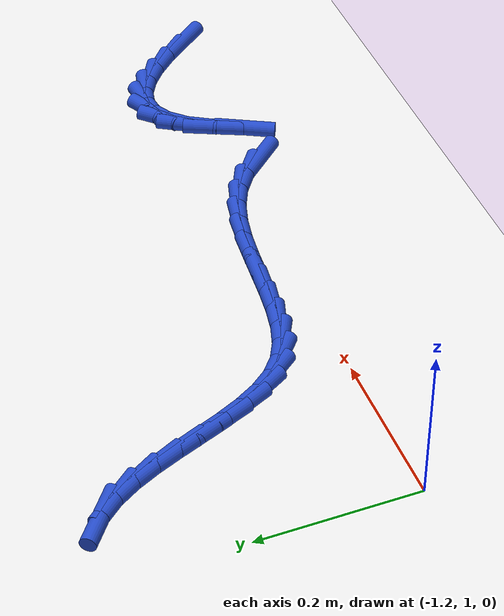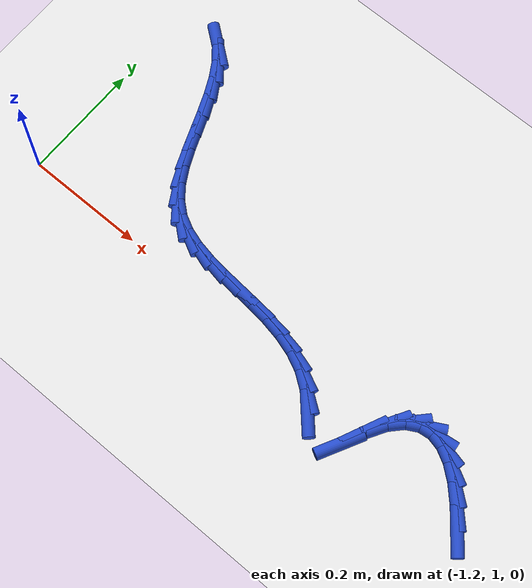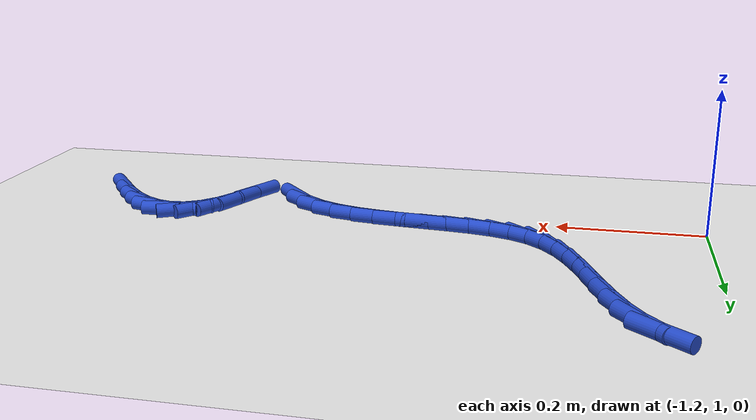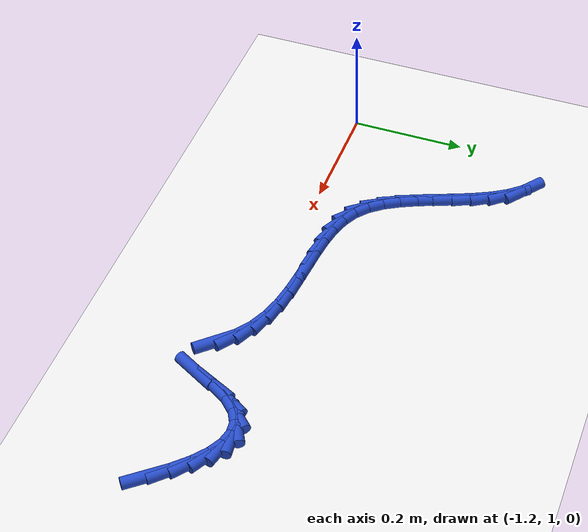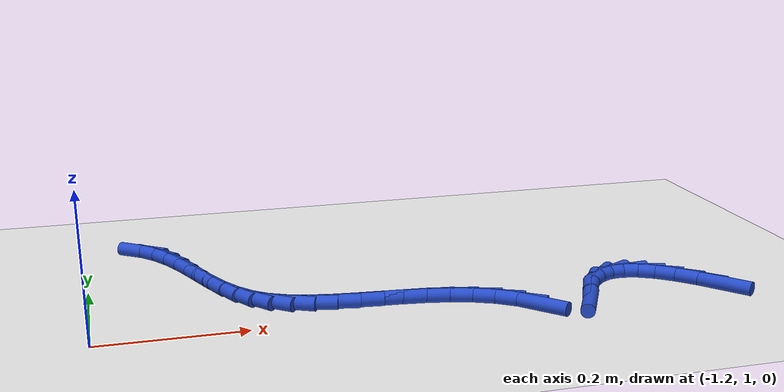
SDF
<sdf version="1.6">
 <world name="default">
  <model name="ground_plane">
   <static>1</static>
   <link name="link">
    <collision name="collision">
     <geometry><plane><normal>0 0 1</normal><size>100 100</size></plane></geometry>
     <surface><friction><ode><mu>100</mu><mu2>50</mu2></ode></friction></surface>
    </collision>
    <visual name="visual">
     <cast_shadows>0</cast_shadows>
     <geometry><plane><normal>0 0 1</normal><size>100 100</size></plane></geometry>
     <material>
      <script><uri>file://media/materials/scripts/gazebo.material</uri><name>Gazebo/WhiteGlow</name></script>
     </material>
    </visual>
   </link>
  </model>
  <model name="line">
   <link name="link_30">
    <pose>-0.3412301344344989 0.9682500073039392 0.01 0 1.57 -0.8949391870520805</pose>
    <collision name="collision">
     <geometry><cylinder><radius>0.01</radius><length>0.08</length></cylinder></geometry>
    </collision>
    <visual name="visual">
     <material>
      <script><name>Gazebo/Blue</name><uri>file://media/materials/scripts/gazebo.material</uri></script>
     </material>
     <geometry><cylinder><radius>0.01</radius><length>0.08</length></cylinder></geometry>
    </visual>
   </link>
   <link name="link_31">
    <pose>-0.36457383218997574 0.9973629535451036 0.01 0 1.57 -0.8075825705660558</pose>
    <collision name="collision">
     <geometry><cylinder><radius>0.01</radius><length>0.08</length></cylinder></geometry>
    </collision>
    <visual name="visual">
     <material>
      <script><name>Gazebo/Blue</name><uri>file://media/materials/scripts/gazebo.material</uri></script>
     </material>
     <geometry><cylinder><radius>0.01</radius><length>0.08</length></cylinder></geometry>
    </visual>
   </link>
   <link name="link_32">
    <pose>-0.38781319071357445 1.0216569851740191 0.01 0 1.57 -0.6838160753995134</pose>
    <collision name="collision">
     <geometry><cylinder><radius>0.01</radius><length>0.08</length></cylinder></geometry>
    </collision>
    <visual name="visual">
     <material>
      <script><name>Gazebo/Blue</name><uri>file://media/materials/scripts/gazebo.material</uri></script>
     </material>
     <geometry><cylinder><radius>0.01</radius><length>0.08</length></cylinder></geometry>
    </visual>
   </link>
   <link name="link_33">
    <pose>-0.41078689892767956 1.0403803845367259 0.01 0 1.57 -0.5028547437351969</pose>
    <collision name="collision">
     <geometry><cylinder><radius>0.01</radius><length>0.08</length></cylinder></geometry>
    </collision>
    <visual name="visual">
     <material>
      <script><name>Gazebo/Blue</name><uri>file://media/materials/scripts/gazebo.material</uri></script>
     </material>
     <geometry><cylinder><radius>0.01</radius><length>0.08</length></cylinder></geometry>
    </visual>
   </link>
   <link name="link_34">
    <pose>-0.433333645754676 1.0527814339792638 0.01 0 1.57 -0.23799572866431298</pose>
    <collision name="collision">
     <geometry><cylinder><radius>0.01</radius><length>0.08</length></cylinder></geometry>
    </collision>
    <visual name="visual">
     <material>
      <script><name>Gazebo/Blue</name><uri>file://media/materials/scripts/gazebo.material</uri></script>
     </material>
     <geometry><cylinder><radius>0.01</radius><length>0.08</length></cylinder></geometry>
    </visual>
   </link>
   <link name="link_35">
    <pose>-0.45529212011694814 1.058108415847673 0.01 0 1.57 0.1172780119326538</pose>
    <collision name="collision">
     <geometry><cylinder><radius>0.01</radius><length>0.08</length></cylinder></geometry>
    </collision>
    <visual name="visual">
     <material>
      <script><name>Gazebo/Blue</name><uri>file://media/materials/scripts/gazebo.material</uri></script>
     </material>
     <geometry><cylinder><radius>0.01</radius><length>0.08</length></cylinder></geometry>
    </visual>
   </link>
   <link name="link_36">
    <pose>-0.47650101093688124 1.0556096124879937 0.01 0 1.57 0.4995240952023879</pose>
    <collision name="collision">
     <geometry><cylinder><radius>0.01</radius><length>0.08</length></cylinder></geometry>
    </collision>
    <visual name="visual">
     <material>
      <script><name>Gazebo/Blue</name><uri>file://media/materials/scripts/gazebo.material</uri></script>
     </material>
     <geometry><cylinder><radius>0.01</radius><length>0.08</length></cylinder></geometry>
    </visual>
   </link>
   <link name="link_37">
    <pose>-0.49679900713685976 1.0445333062462656 0.01 0 1.57 0.8151571539769104</pose>
    <collision name="collision">
     <geometry><cylinder><radius>0.01</radius><length>0.08</length></cylinder></geometry>
    </collision>
    <visual name="visual">
     <material>
      <script><name>Gazebo/Blue</name><uri>file://media/materials/scripts/gazebo.material</uri></script>
     </material>
     <geometry><cylinder><radius>0.01</radius><length>0.08</length></cylinder></geometry>
    </visual>
   </link>
   <link name="link_38">
    <pose>-0.5160247976392685 1.0241277794685293 0.01 0 1.57 1.037218106697893</pose>
    <collision name="collision">
     <geometry><cylinder><radius>0.01</radius><length>0.08</length></cylinder></geometry>
    </collision>
    <visual name="visual">
     <material>
      <script><name>Gazebo/Blue</name><uri>file://media/materials/scripts/gazebo.material</uri></script>
     </material>
     <geometry><cylinder><radius>0.01</radius><length>0.08</length></cylinder></geometry>
    </visual>
   </link>
   <link name="link_39">
    <pose>-0.5340183513088653 0.9936681118715908 0.01 0 1.57 1.1435346667572042</pose>
    <collision name="collision">
     <geometry><cylinder><radius>0.01</radius><length>0.08</length></cylinder></geometry>
    </collision>
    <visual name="visual">
     <material>
      <script><name>Gazebo/Blue</name><uri>file://media/materials/scripts/gazebo.material</uri></script>
     </material>
     <geometry><cylinder><radius>0.01</radius><length>0.08</length></cylinder></geometry>
    </visual>
   </link>
   <link name="link_40">
    <pose>-0.550826154191086 0.9567531070954614 0.01 0 1.57 1.0880244593667912</pose>
    <collision name="collision">
     <geometry><cylinder><radius>0.01</radius><length>0.08</length></cylinder></geometry>
    </collision>
    <visual name="visual">
     <material>
      <script><name>Gazebo/Blue</name><uri>file://media/materials/scripts/gazebo.material</uri></script>
     </material>
     <geometry><cylinder><radius>0.01</radius><length>0.08</length></cylinder></geometry>
    </visual>
   </link>
   <link name="link_44">
    <pose>-0.6182116208431119 0.9640466401776853 0.01 0 1.57 -0.8342640109263174</pose>
    <collision name="collision">
     <geometry><cylinder><radius>0.01</radius><length>0.08</length></cylinder></geometry>
    </collision>
    <visual name="visual">
     <material>
      <script><name>Gazebo/Blue</name><uri>file://media/materials/scripts/gazebo.material</uri></script>
     </material>
     <geometry><cylinder><radius>0.01</radius><length>0.08</length></cylinder></geometry>
    </visual>
   </link>
   <link name="link_45">
    <pose>-0.6407668364349389 0.988921408699938 0.01 0 1.57 -0.6256301253564622</pose>
    <collision name="collision">
     <geometry><cylinder><radius>0.01</radius><length>0.08</length></cylinder></geometry>
    </collision>
    <visual name="visual">
     <material>
      <script><name>Gazebo/Blue</name><uri>file://media/materials/scripts/gazebo.material</uri></script>
     </material>
     <geometry><cylinder><radius>0.01</radius><length>0.08</length></cylinder></geometry>
    </visual>
   </link>
   <link name="link_46">
    <pose>-0.6665685115389642 1.0075616484629328 0.01 0 1.57 -0.4413386298287435</pose>
    <collision name="collision">
     <geometry><cylinder><radius>0.01</radius><length>0.08</length></cylinder></geometry>
    </collision>
    <visual name="visual">
     <material>
      <script><name>Gazebo/Blue</name><uri>file://media/materials/scripts/gazebo.material</uri></script>
     </material>
     <geometry><cylinder><radius>0.01</radius><length>0.08</length></cylinder></geometry>
    </visual>
   </link>
   <link name="link_47">
    <pose>-0.6949974177263137 1.0209919435007841 0.01 0 1.57 -0.2948852772834443</pose>
    <collision name="collision">
     <geometry><cylinder><radius>0.01</radius><length>0.08</length></cylinder></geometry>
    </collision>
    <visual name="visual">
     <material>
      <script><name>Gazebo/Blue</name><uri>file://media/materials/scripts/gazebo.material</uri></script>
     </material>
     <geometry><cylinder><radius>0.01</radius><length>0.08</length></cylinder></geometry>
    </visual>
   </link>
   <link name="link_48">
    <pose>-0.7254343265681126 1.030236877847606 0.01 0 1.57 -0.18889220728602835</pose>
    <collision name="collision">
     <geometry><cylinder><radius>0.01</radius><length>0.08</length></cylinder></geometry>
    </collision>
    <visual name="visual">
     <material>
      <script><name>Gazebo/Blue</name><uri>file://media/materials/scripts/gazebo.material</uri></script>
     </material>
     <geometry><cylinder><radius>0.01</radius><length>0.08</length></cylinder></geometry>
    </visual>
   </link>
   <link name="link_49">
    <pose>-0.7572600096354866 1.0363210355375145 0.01 0 1.57 -0.12053381596016685</pose>
    <collision name="collision">
     <geometry><cylinder><radius>0.01</radius><length>0.08</length></cylinder></geometry>
    </collision>
    <visual name="visual">
     <material>
      <script><name>Gazebo/Blue</name><uri>file://media/materials/scripts/gazebo.material</uri></script>
     </material>
     <geometry><cylinder><radius>0.01</radius><length>0.08</length></cylinder></geometry>
    </visual>
   </link>
   <link name="link_50">
    <pose>-0.7898552384995603 1.0402690006046222 0.01 0 1.57 -0.08640243113839567</pose>
    <collision name="collision">
     <geometry><cylinder><radius>0.01</radius><length>0.08</length></cylinder></geometry>
    </collision>
    <visual name="visual">
     <material>
      <script><name>Gazebo/Blue</name><uri>file://media/materials/scripts/gazebo.material</uri></script>
     </material>
     <geometry><cylinder><radius>0.01</radius><length>0.08</length></cylinder></geometry>
    </visual>
   </link>
   <link name="link_51">
    <pose>-0.8226007847314598 1.0431053570830453 0.01 0 1.57 -0.08497513101354197</pose>
    <collision name="collision">
     <geometry><cylinder><radius>0.01</radius><length>0.08</length></cylinder></geometry>
    </collision>
    <visual name="visual">
     <material>
      <script><name>Gazebo/Blue</name><uri>file://media/materials/scripts/gazebo.material</uri></script>
     </material>
     <geometry><cylinder><radius>0.01</radius><length>0.08</length></cylinder></geometry>
    </visual>
   </link>
   <link name="link_52">
    <pose>-0.8548774199023105 1.0458546890068972 0.01 0 1.57 -0.11766710511691242</pose>
    <collision name="collision">
     <geometry><cylinder><radius>0.01</radius><length>0.08</length></cylinder></geometry>
    </collision>
    <visual name="visual">
     <material>
      <script><name>Gazebo/Blue</name><uri>file://media/materials/scripts/gazebo.material</uri></script>
     </material>
     <geometry><cylinder><radius>0.01</radius><length>0.08</length></cylinder></geometry>
    </visual>
   </link>
   <link name="link_53">
    <pose>-0.8860659155832379 1.0495415804102932 0.01 0 1.57 -0.1893204956750121</pose>
    <collision name="collision">
     <geometry><cylinder><radius>0.01</radius><length>0.08</length></cylinder></geometry>
    </collision>
    <visual name="visual">
     <material>
      <script><name>Gazebo/Blue</name><uri>file://media/materials/scripts/gazebo.material</uri></script>
     </material>
     <geometry><cylinder><radius>0.01</radius><length>0.08</length></cylinder></geometry>
    </visual>
   </link>
   <link name="link_54">
    <pose>-0.915547043345367 1.0551906153273474 0.01 0 1.57 -0.30790845379074666</pose>
    <collision name="collision">
     <geometry><cylinder><radius>0.01</radius><length>0.08</length></cylinder></geometry>
    </collision>
    <visual name="visual">
     <material>
      <script><name>Gazebo/Blue</name><uri>file://media/materials/scripts/gazebo.material</uri></script>
     </material>
     <geometry><cylinder><radius>0.01</radius><length>0.08</length></cylinder></geometry>
    </visual>
   </link>
   <link name="link_55">
    <pose>-0.9427015747598236 1.0638263777921744 0.01 0 1.57 -0.48142106793282485</pose>
    <collision name="collision">
     <geometry><cylinder><radius>0.01</radius><length>0.08</length></cylinder></geometry>
    </collision>
    <visual name="visual">
     <material>
      <script><name>Gazebo/Blue</name><uri>file://media/materials/scripts/gazebo.material</uri></script>
     </material>
     <geometry><cylinder><radius>0.01</radius><length>0.08</length></cylinder></geometry>
    </visual>
   </link>
   <link name="link_56">
    <pose>-0.9669102813977329 1.076473451838889 0.01 0 1.57 -0.7046636350369208</pose>
    <collision name="collision">
     <geometry><cylinder><radius>0.01</radius><length>0.08</length></cylinder></geometry>
    </collision>
    <visual name="visual">
     <material>
      <script><name>Gazebo/Blue</name><uri>file://media/materials/scripts/gazebo.material</uri></script>
     </material>
     <geometry><cylinder><radius>0.01</radius><length>0.08</length></cylinder></geometry>
    </visual>
   </link>
   <link name="link_57">
    <pose>-0.9876092351776377 1.0940736092916912 0.01 0 1.57 -0.9095063778615197</pose>
    <collision name="collision">
     <geometry><cylinder><radius>0.01</radius><length>0.08</length></cylinder></geometry>
    </collision>
    <visual name="visual">
     <material>
      <script><name>Gazebo/Blue</name><uri>file://media/materials/scripts/gazebo.material</uri></script>
     </material>
     <geometry><cylinder><radius>0.01</radius><length>0.08</length></cylinder></geometry>
    </visual>
   </link>
   <link name="link_58">
    <pose>-1.0050001858075797 1.1164220203205089 0.01 0 1.57 -1.0529268660991993</pose>
    <collision name="collision">
     <geometry><cylinder><radius>0.01</radius><length>0.08</length></cylinder></geometry>
    </collision>
    <visual name="visual">
     <material>
      <script><name>Gazebo/Blue</name><uri>file://media/materials/scripts/gazebo.material</uri></script>
     </material>
     <geometry><cylinder><radius>0.01</radius><length>0.08</length></cylinder></geometry>
    </visual>
   </link>
   <link name="link_59">
    <pose>-1.0198442227001652 1.1424762444980283 0.01 0 1.57 -1.1434126777221763</pose>
    <collision name="collision">
     <geometry><cylinder><radius>0.01</radius><length>0.08</length></cylinder></geometry>
    </collision>
    <visual name="visual">
     <material>
      <script><name>Gazebo/Blue</name><uri>file://media/materials/scripts/gazebo.material</uri></script>
     </material>
     <geometry><cylinder><radius>0.01</radius><length>0.08</length></cylinder></geometry>
    </visual>
   </link>
   <link name="link_60">
    <pose>-1.0329151882505205 1.1711747438195312 0.01 0 1.57 -1.191450816749732</pose>
    <collision name="collision">
     <geometry><cylinder><radius>0.01</radius><length>0.08</length></cylinder></geometry>
    </collision>
    <visual name="visual">
     <material>
      <script><name>Gazebo/Blue</name><uri>file://media/materials/scripts/gazebo.material</uri></script>
     </material>
     <geometry><cylinder><radius>0.01</radius><length>0.08</length></cylinder></geometry>
    </visual>
   </link>
   <link name="link_61">
    <pose>-1.0449869248537709 1.2014559802802989 0.01 0 1.57 -1.2036434372366889</pose>
    <collision name="collision">
     <geometry><cylinder><radius>0.01</radius><length>0.08</length></cylinder></geometry>
    </collision>
    <visual name="visual">
     <material>
      <script><name>Gazebo/Blue</name><uri>file://media/materials/scripts/gazebo.material</uri></script>
     </material>
     <geometry><cylinder><radius>0.01</radius><length>0.08</length></cylinder></geometry>
    </visual>
   </link>
   <link name="link_62">
    <pose>-1.0568332749050418 1.2322584158756114 0.01 0 1.57 -1.1820571133412723</pose>
    <collision name="collision">
     <geometry><cylinder><radius>0.01</radius><length>0.08</length></cylinder></geometry>
    </collision>
    <visual name="visual">
     <material>
      <script><name>Gazebo/Blue</name><uri>file://media/materials/scripts/gazebo.material</uri></script>
     </material>
     <geometry><cylinder><radius>0.01</radius><length>0.08</length></cylinder></geometry>
    </visual>
   </link>
   <link name="link_63">
    <pose>-1.0692280807994594 1.2625205126007513 0.01 0 1.57 -1.124405647208603</pose>
    <collision name="collision">
     <geometry><cylinder><radius>0.01</radius><length>0.08</length></cylinder></geometry>
    </collision>
    <visual name="visual">
     <material>
      <script><name>Gazebo/Blue</name><uri>file://media/materials/scripts/gazebo.material</uri></script>
     </material>
     <geometry><cylinder><radius>0.01</radius><length>0.08</length></cylinder></geometry>
    </visual>
   </link>
   <link name="link_64">
    <pose>-1.0829451849321492 1.2911807324509992 0.01 0 1.57 -1.0243134010870778</pose>
    <collision name="collision">
     <geometry><cylinder><radius>0.01</radius><length>0.08</length></cylinder></geometry>
    </collision>
    <visual name="visual">
     <material>
      <script><name>Gazebo/Blue</name><uri>file://media/materials/scripts/gazebo.material</uri></script>
     </material>
     <geometry><cylinder><radius>0.01</radius><length>0.08</length></cylinder></geometry>
    </visual>
   </link>
   <link name="link_65">
    <pose>-1.0987584296982367 1.3171775374216366 0.01 0 1.57 -0.8727983603358828</pose>
    <collision name="collision">
     <geometry><cylinder><radius>0.01</radius><length>0.08</length></cylinder></geometry>
    </collision>
    <visual name="visual">
     <material>
      <script><name>Gazebo/Blue</name><uri>file://media/materials/scripts/gazebo.material</uri></script>
     </material>
     <geometry><cylinder><radius>0.01</radius><length>0.08</length></cylinder></geometry>
    </visual>
   </link>
   <link name="link_66">
    <pose>-1.1174416574928467 1.3394493895079438 0.01 0 1.57 -0.6658102244209142</pose>
    <collision name="collision">
     <geometry><cylinder><radius>0.01</radius><length>0.08</length></cylinder></geometry>
    </collision>
    <visual name="visual">
     <material>
      <script><name>Gazebo/Blue</name><uri>file://media/materials/scripts/gazebo.material</uri></script>
     </material>
     <geometry><cylinder><radius>0.01</radius><length>0.08</length></cylinder></geometry>
    </visual>
   </link>
  </model>
 </world>
</sdf>
